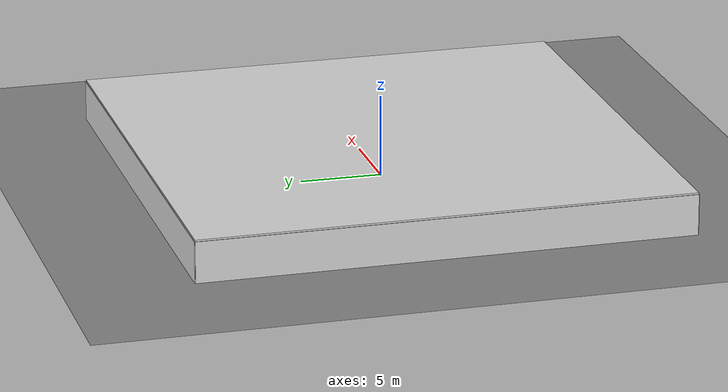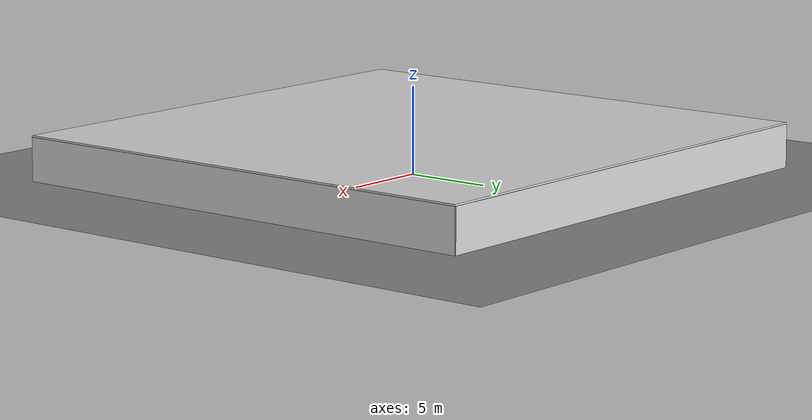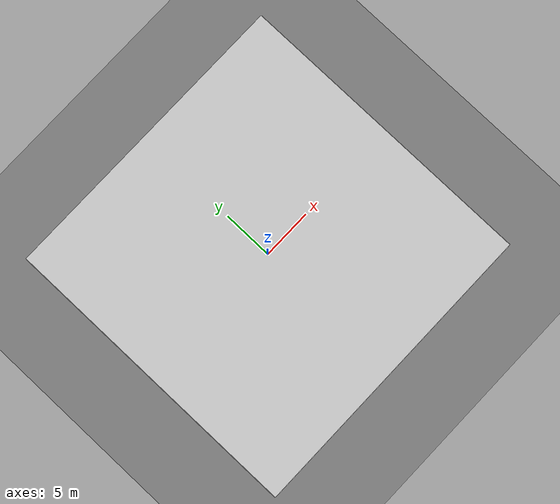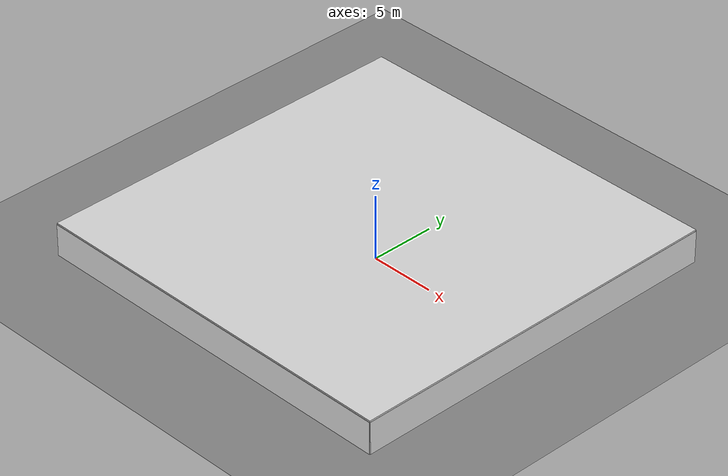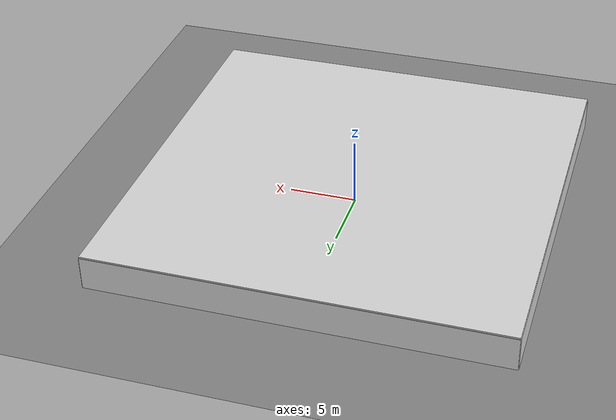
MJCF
<mujoco model="scene">

  <visual>
    <headlight diffuse="0.6 0.6 0.6" ambient="0.3 0.3 0.3" specular="0 0 0"/>
    <rgba haze="0.871 0.616 0.4 0.5"/>
    <global azimuth="-130" elevation="-20"/>
  </visual>

  <asset>
    <texture builtin="gradient" height="100" rgb1="0.9 0.9 0.9" rgb2="0.55 0.25 0.0" type="skybox" width="100"/>
    <include file="../../room/objects/materials.xml"/>
  </asset>

    <worldbody>
        <geom name="floor" friction="1 .1 .1" pos="0 0 0" size="0 0 0.125" type="plane" material="mat_floor" condim="3" conaffinity="1" contype="1" group="2"/>
        <light cutoff="1000" diffuse="1.5 1.5 1.5" dir="-0 0 -1.3" directional="true" exponent="10" pos="0 0 10.3" specular=".1 .1 .1" castshadow="false"/>

        <geom name="wall_negx" type="box" pos="-15.0 0.0 1.25" size="0.05 15.0 1.25" material="mat_wall"/>
        <geom name="wall_posx" type="box" pos=" 15.0 0.0 1.25" size="0.05 15.0 1.25" material="mat_wall"/>
        <geom name="wall_negy" type="box" pos="0.0 -15.0 1.25" size="15.0 0.05 1.25" material="mat_wall"/>
        <geom name="wall_posy" type="box" pos="0.0  15.0 1.25" size="15.0 0.05 1.25" material="mat_wall"/>

        <geom name="ceiling" type="box"
          pos="0 0 2.55"
          size="15.0 15.0 0.05"
          material="mat_wall"
          contype="1" conaffinity="1"
        />

        <!-- SCENARIO: FT1_TC_R_VN | Single trash_can, R view, x=1.5m -->

        <!-- TARGET: trash_can -->
        <body name="trash_can_target" pos="1.5000 0.0000 0.0" euler="0 0 0.0000">
          <include file="../../room/objects/trash_can.xml"/>
        </body>

        <!-- DISTRACTORS: none -->

    </worldbody>
</mujoco>

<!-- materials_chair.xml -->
<mujoco>
  <texture name="tex_wood_chair" type="2d" file="oak_veneer_01_diff_2k.png"/>
  <material name="mat_wood_chair"
            texture="tex_wood_chair"
            texrepeat="1.2 1.2"
            texuniform="true"
            rgba="1 1 1 1"
            specular="0.22"
            shininess="0.35"
            reflectance="0.04"/>
</mujoco>

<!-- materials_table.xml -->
<mujoco>
  <texture name="tex_wood_table" type="2d" file="wood_table_001_diff_2k.png"/>
  <material name="mat_wood_table"
            texture="tex_wood_table"
            texrepeat="1.2 1.2"
            texuniform="true"
            rgba="1 1 1 1"
            specular="0.22"
            shininess="0.35"
            reflectance="0.04"/>
</mujoco>

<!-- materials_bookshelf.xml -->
<mujoco>
  <texture name="tex_bookshelf_wood"
           type="2d"
           file="oak_veneer_01_diff_2k.png"/>

  <material name="mat_wood_bookshelf"
            texture="tex_bookshelf_wood"
            texrepeat="1.2 1.2"
            texuniform="true"
            rgba="1 1 1 1"
            specular="0.22"
            shininess="0.35"
            reflectance="0.04"/>
</mujoco>

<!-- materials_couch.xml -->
<mujoco>
  <texture name="tex_wood_couch" type="2d" file="wood_table_001_diff_2k.png"/>
  <material name="mat_wood_couch"
            texture="tex_wood_couch"
            texrepeat="1.2 1.2"
            texuniform="true"
            rgba="1 1 1 1"
            specular="0.22"
            shininess="0.35"
            reflectance="0.04"/>

  <texture name="tex_fabric" type="2d" file="rough_linen_diff_2k.png"/>
  <material name="mat_fabric"
            texture="tex_fabric"
            texrepeat="1.2 1.2"
            texuniform="true"
            rgba="1 1 1 1"
            specular="0.10"
            shininess="0.08"
            reflectance="0.01"/>
</mujoco>

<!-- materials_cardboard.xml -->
<mujoco>
  <texture name="tex_cardboard" type="2d" file="cardboard.png"/>
  <material name="mat_cardboard"
            texture="tex_cardboard"
            texrepeat="1.2 1.2"
            texuniform="true"
            rgba="1 1 1 1"
            specular="0.10"
            shininess="0.08"
            reflectance="0.01"/>
</mujoco>

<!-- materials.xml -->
<mujoco>
  <material name="mat_wall" rgba="0.85 0.85 0.85 1"/>
  <include file="materials_chair.xml"/>

  <include file="materials_table.xml"/>

  <include file="materials_bookshelf.xml"/>
  <material name="mat_book_red" rgba="0.70 0.18 0.16 1"/>
  <material name="mat_book_blue" rgba="0.16 0.31 0.62 1"/>
  <material name="mat_book_green" rgba="0.22 0.45 0.24 1"/>
  <material name="mat_book_yellow" rgba="0.78 0.66 0.22 1"/>
  <material name="mat_book_dark" rgba="0.20 0.18 0.17 1"/>

  <include file="materials_couch.xml"/>
  <include file="materials_cardboard.xml"/>

  <texture name="tex_metal" type="2d" file="metal.png"/>
  <material name="mat_metal" texture="tex_metal" texrepeat="2 2" reflectance="0.3"/>
  <material name="mat_trash_can_dark_green"
            texture="tex_metal"
            texrepeat="2 2"
            rgba="0.10 0.18 0.12 1"
            specular="0.18"
            shininess="0.20"
            reflectance="0.02"/>

  <texture name="tex_floor" type="2d" builtin="checker" width="512" height="512"
           rgb1="0.55 0.55 0.55" rgb2="0.50 0.50 0.50"/>
  <material name="mat_floor" texture="tex_floor" texrepeat="4 4" reflectance="0.00"/>

</mujoco>

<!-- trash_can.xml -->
<mujoco>
  <body>
    <!-- bottom foot ring -->
    <geom name="trash_can_base_ring" type="cylinder"
          pos="0 0 0.020" size="0.115 0.020"
          material="mat_trash_can_dark_green"/>

    <!-- main body -->
    <geom name="trash_can_body" type="cylinder"
          pos="0 0 0.155" size="0.138 0.135"
          material="mat_trash_can_dark_green"/>

    <!-- upper collar -->
    <geom name="trash_can_upper_band" type="cylinder"
          pos="0 0 0.265" size="0.152 0.016"
          material="mat_trash_can_dark_green"/>

    <!-- rolled top rim -->
    <geom name="trash_can_rim" type="cylinder"
          pos="0 0 0.292" size="0.168 0.010"
          material="mat_trash_can_dark_green"/>

    <!-- inset inner lip for a more finished opening -->
    <geom name="trash_can_inner_lip" type="cylinder"
          pos="0 0 0.276" size="0.126 0.008"
          material="mat_trash_can_dark_green"/>
  </body>
</mujoco>
